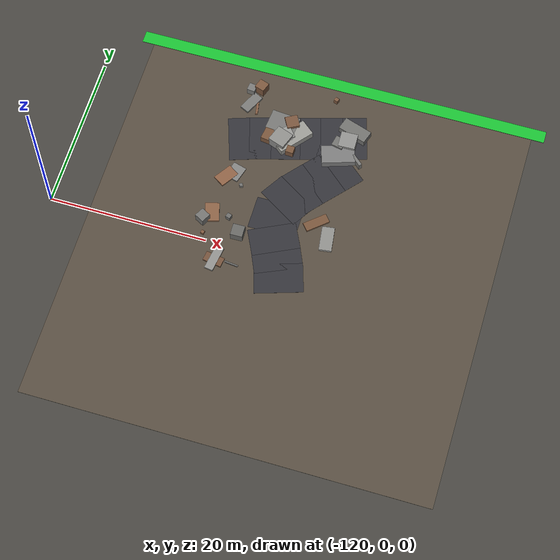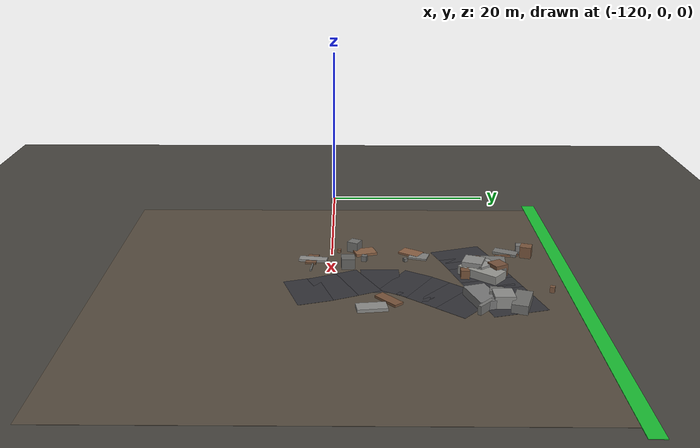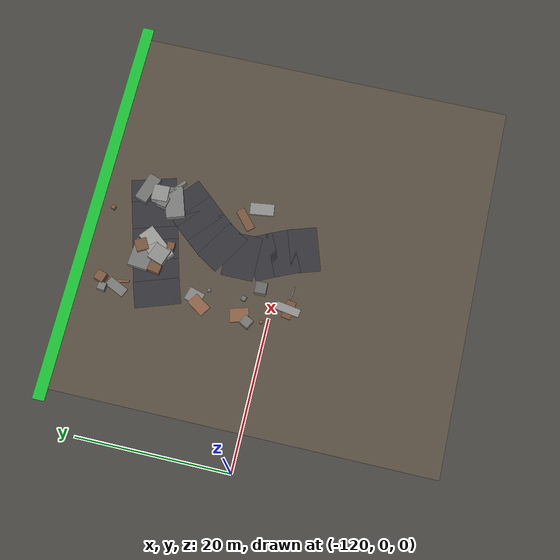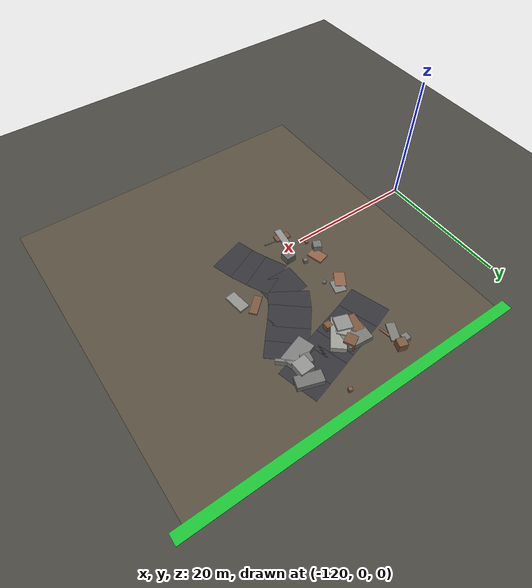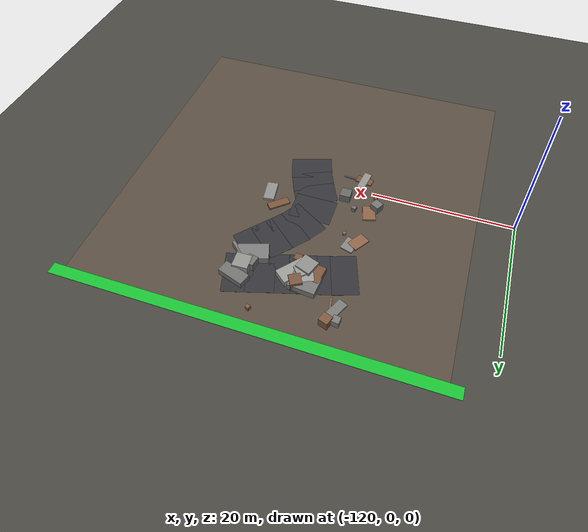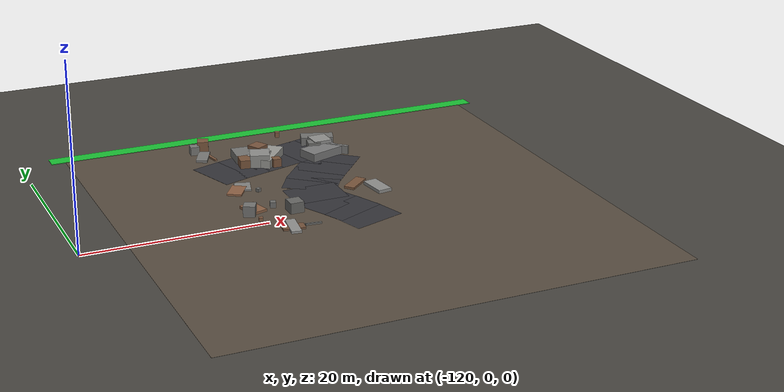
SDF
<sdf version="1.6">
 <world name="navitas_arena">
  <model name="ground_plane">
   <static>true</static>
   <link name="link">
    <collision name="collision">
     <geometry><plane><normal>0 0 1</normal><size>400 400</size></plane></geometry>
     <surface><friction><ode><mu>0.820</mu><mu2>0.820</mu2></ode></friction></surface>
    </collision>
    <visual name="visual">
     <cast_shadows>false</cast_shadows>
     <geometry><plane><normal>0 0 1</normal><size>400 400</size></plane></geometry>
     <material><ambient>0.280 0.270 0.250 1</ambient><diffuse>0.280 0.270 0.250 1</diffuse></material>
    </visual>
   </link>
  </model>
  <model name="gd_kolay">
   <static>true</static>
   <pose>-90.000 0.000 0.010 0 0 0.000</pose>
   <link name="link">
    <collision name="col"><geometry><box><size>50.000 50.000 0.020</size></box></geometry></collision>
    <visual name="vis">
     <geometry><box><size>50.000 50.000 0.020</size></box></geometry>
     <material><ambient>0.34 0.30 0.25 1</ambient><diffuse>0.34 0.30 0.25 1</diffuse></material>
    </visual>
   </link>
  </model>
  <model name="brd_kolay_N">
   <static>true</static>
   <pose>-90.000 25.800 0.040 0 0 0.000</pose>
   <link name="link">
    <collision name="col"><geometry><box><size>53.200 1.600 0.080</size></box></geometry></collision>
    <visual name="vis">
     <geometry><box><size>53.200 1.600 0.080</size></box></geometry>
     <material><ambient>0.10 0.75 0.20 1</ambient><diffuse>0.10 0.75 0.20 1</diffuse></material>
    </visual>
   </link>
  </model>
  <model name="road_kolay_1_17">
   <static>true</static>
   <pose>-99.868 14.853 0.040 0 0 0.329</pose>
   <link name="link">
    <collision name="col"><geometry><box><size>3.490 6.000 0.020</size></box></geometry></collision>
    <visual name="vis">
     <geometry><box><size>3.490 6.000 0.020</size></box></geometry>
     <material><ambient>0.20 0.20 0.22 1</ambient><diffuse>0.20 0.20 0.22 1</diffuse></material>
    </visual>
   </link>
  </model>
  <model name="road_kolay_1_18">
   <static>true</static>
   <pose>-97.321 15.657 0.040 0 0 0.284</pose>
   <link name="link">
    <collision name="col"><geometry><box><size>3.652 6.000 0.020</size></box></geometry></collision>
    <visual name="vis">
     <geometry><box><size>3.652 6.000 0.020</size></box></geometry>
     <material><ambient>0.20 0.20 0.22 1</ambient><diffuse>0.20 0.20 0.22 1</diffuse></material>
    </visual>
   </link>
  </model>
  <model name="road_kolay_1_19">
   <static>true</static>
   <pose>-94.676 16.409 0.040 0 0 0.270</pose>
   <link name="link">
    <collision name="col"><geometry><box><size>3.648 6.000 0.020</size></box></geometry></collision>
    <visual name="vis">
     <geometry><box><size>3.648 6.000 0.020</size></box></geometry>
     <material><ambient>0.20 0.20 0.22 1</ambient><diffuse>0.20 0.20 0.22 1</diffuse></material>
    </visual>
   </link>
  </model>
  <model name="road_kolay_1_20">
   <static>true</static>
   <pose>-92.118 17.138 0.040 0 0 0.285</pose>
   <link name="link">
    <collision name="col"><geometry><box><size>3.473 6.000 0.020</size></box></geometry></collision>
    <visual name="vis">
     <geometry><box><size>3.473 6.000 0.020</size></box></geometry>
     <material><ambient>0.20 0.20 0.22 1</ambient><diffuse>0.20 0.20 0.22 1</diffuse></material>
    </visual>
   </link>
  </model>
  <model name="road_kolay_1_21">
   <static>true</static>
   <pose>-89.523 17.910 0.040 0 0 0.293</pose>
   <link name="link">
    <collision name="col"><geometry><box><size>3.741 6.000 0.020</size></box></geometry></collision>
    <visual name="vis">
     <geometry><box><size>3.741 6.000 0.020</size></box></geometry>
     <material><ambient>0.20 0.20 0.22 1</ambient><diffuse>0.20 0.20 0.22 1</diffuse></material>
    </visual>
   </link>
  </model>
  <model name="road_kolay_1_22">
   <static>true</static>
   <pose>-86.726 18.730 0.040 0 0 0.278</pose>
   <link name="link">
    <collision name="col"><geometry><box><size>3.890 6.000 0.020</size></box></geometry></collision>
    <visual name="vis">
     <geometry><box><size>3.890 6.000 0.020</size></box></geometry>
     <material><ambient>0.20 0.20 0.22 1</ambient><diffuse>0.20 0.20 0.22 1</diffuse></material>
    </visual>
   </link>
  </model>
  <model name="road_kolay_2_7">
   <static>true</static>
   <pose>-89.991 -2.400 0.040 0 0 1.884</pose>
   <link name="link">
    <collision name="col"><geometry><box><size>3.843 6.000 0.020</size></box></geometry></collision>
    <visual name="vis">
     <geometry><box><size>3.843 6.000 0.020</size></box></geometry>
     <material><ambient>0.20 0.20 0.22 1</ambient><diffuse>0.20 0.20 0.22 1</diffuse></material>
    </visual>
   </link>
  </model>
  <model name="road_kolay_2_8">
   <static>true</static>
   <pose>-90.962 0.167 0.040 0 0 1.988</pose>
   <link name="link">
    <collision name="col"><geometry><box><size>3.452 6.000 0.020</size></box></geometry></collision>
    <visual name="vis">
     <geometry><box><size>3.452 6.000 0.020</size></box></geometry>
     <material><ambient>0.20 0.20 0.22 1</ambient><diffuse>0.20 0.20 0.22 1</diffuse></material>
    </visual>
   </link>
  </model>
  <model name="road_kolay_2_9">
   <static>true</static>
   <pose>-92.051 2.500 0.040 0 0 2.026</pose>
   <link name="link">
    <collision name="col"><geometry><box><size>3.498 6.000 0.020</size></box></geometry></collision>
    <visual name="vis">
     <geometry><box><size>3.498 6.000 0.020</size></box></geometry>
     <material><ambient>0.20 0.20 0.22 1</ambient><diffuse>0.20 0.20 0.22 1</diffuse></material>
    </visual>
   </link>
  </model>
  <model name="road_kolay_2_10">
   <static>true</static>
   <pose>-92.623 5.344 0.040 0 0 1.571</pose>
   <link name="link">
    <collision name="col"><geometry><box><size>4.255 6.000 0.020</size></box></geometry></collision>
    <visual name="vis">
     <geometry><box><size>4.255 6.000 0.020</size></box></geometry>
     <material><ambient>0.20 0.20 0.22 1</ambient><diffuse>0.20 0.20 0.22 1</diffuse></material>
    </visual>
   </link>
  </model>
  <model name="road_kolay_2_11">
   <static>true</static>
   <pose>-91.972 8.077 0.040 0 0 1.018</pose>
   <link name="link">
    <collision name="col"><geometry><box><size>3.379 6.000 0.020</size></box></geometry></collision>
    <visual name="vis">
     <geometry><box><size>3.379 6.000 0.020</size></box></geometry>
     <material><ambient>0.20 0.20 0.22 1</ambient><diffuse>0.20 0.20 0.22 1</diffuse></material>
    </visual>
   </link>
  </model>
  <model name="road_kolay_2_12">
   <static>true</static>
   <pose>-90.460 10.157 0.040 0 0 0.873</pose>
   <link name="link">
    <collision name="col"><geometry><box><size>3.577 6.000 0.020</size></box></geometry></collision>
    <visual name="vis">
     <geometry><box><size>3.577 6.000 0.020</size></box></geometry>
     <material><ambient>0.20 0.20 0.22 1</ambient><diffuse>0.20 0.20 0.22 1</diffuse></material>
    </visual>
   </link>
  </model>
  <model name="road_kolay_2_13">
   <static>true</static>
   <pose>-88.810 12.091 0.040 0 0 0.855</pose>
   <link name="link">
    <collision name="col"><geometry><box><size>3.308 6.000 0.020</size></box></geometry></collision>
    <visual name="vis">
     <geometry><box><size>3.308 6.000 0.020</size></box></geometry>
     <material><ambient>0.20 0.20 0.22 1</ambient><diffuse>0.20 0.20 0.22 1</diffuse></material>
    </visual>
   </link>
  </model>
  <model name="road_kolay_2_14">
   <static>true</static>
   <pose>-87.152 14.014 0.040 0 0 0.863</pose>
   <link name="link">
    <collision name="col"><geometry><box><size>3.570 6.000 0.020</size></box></geometry></collision>
    <visual name="vis">
     <geometry><box><size>3.570 6.000 0.020</size></box></geometry>
     <material><ambient>0.20 0.20 0.22 1</ambient><diffuse>0.20 0.20 0.22 1</diffuse></material>
    </visual>
   </link>
  </model>
  <model name="blk_kolay_1_1_0">
   <static>true</static>
   <pose>-94.679 16.506 0.615 0 0 2.246</pose>
   <link name="link">
    <collision name="col"><geometry><box><size>1.745 1.745 1.229</size></box></geometry></collision>
    <visual name="vis">
     <geometry><box><size>1.745 1.745 1.229</size></box></geometry>
     <material><ambient>0.59 0.59 0.58 1</ambient><diffuse>0.59 0.59 0.58 1</diffuse></material>
    </visual>
   </link>
  </model>
  <model name="blk_kolay_1_1_1">
   <static>true</static>
   <pose>-95.653 15.428 0.500 0 0 0.608</pose>
   <link name="link">
    <collision name="col"><geometry><box><size>0.809 0.809 1.000</size></box></geometry></collision>
    <visual name="vis">
     <geometry><box><size>0.809 0.809 1.000</size></box></geometry>
     <material><ambient>0.52 0.52 0.51 1</ambient><diffuse>0.52 0.52 0.51 1</diffuse></material>
    </visual>
   </link>
  </model>
  <model name="blk_kolay_1_1_2">
   <static>true</static>
   <pose>-95.092 15.694 0.757 0 0 1.229</pose>
   <link name="link">
    <collision name="col"><geometry><box><size>2.191 2.191 1.515</size></box></geometry></collision>
    <visual name="vis">
     <geometry><box><size>2.191 2.191 1.515</size></box></geometry>
     <material><ambient>0.55 0.55 0.54 1</ambient><diffuse>0.55 0.55 0.54 1</diffuse></material>
    </visual>
   </link>
  </model>
  <model name="blk_kolay_1_1_3">
   <static>true</static>
   <pose>-94.352 18.257 0.710 0 0 0.504</pose>
   <link name="link">
    <collision name="col"><geometry><box><size>1.588 1.588 1.420</size></box></geometry></collision>
    <visual name="vis">
     <geometry><box><size>1.588 1.588 1.420</size></box></geometry>
     <material><ambient>0.47 0.33 0.24 1</ambient><diffuse>0.47 0.33 0.24 1</diffuse></material>
    </visual>
   </link>
  </model>
  <model name="blk_kolay_1_1_4">
   <static>true</static>
   <pose>-93.833 16.455 0.500 0 0 0.879</pose>
   <link name="link">
    <collision name="col"><geometry><box><size>4.776 2.167 1.000</size></box></geometry></collision>
    <visual name="vis">
     <geometry><box><size>4.776 2.167 1.000</size></box></geometry>
     <material><ambient>0.60 0.60 0.58 1</ambient><diffuse>0.60 0.60 0.58 1</diffuse></material>
    </visual>
   </link>
  </model>
  <model name="blk_kolay_1_1_5">
   <static>true</static>
   <pose>-93.541 14.595 0.500 0 0 1.538</pose>
   <link name="link">
    <collision name="col"><geometry><box><size>0.969 0.969 1.000</size></box></geometry></collision>
    <visual name="vis">
     <geometry><box><size>0.969 0.969 1.000</size></box></geometry>
     <material><ambient>0.47 0.33 0.23 1</ambient><diffuse>0.47 0.33 0.23 1</diffuse></material>
    </visual>
   </link>
  </model>
  <model name="blk_kolay_1_1_6">
   <static>true</static>
   <pose>-95.481 17.961 0.500 0 0 3.052</pose>
   <link name="link">
    <collision name="col"><geometry><box><size>3.701 2.669 1.000</size></box></geometry></collision>
    <visual name="vis">
     <geometry><box><size>3.701 2.669 1.000</size></box></geometry>
     <material><ambient>0.46 0.46 0.45 1</ambient><diffuse>0.46 0.46 0.45 1</diffuse></material>
    </visual>
   </link>
  </model>
  <model name="blk_kolay_1_1_7">
   <static>true</static>
   <pose>-95.131 16.755 0.500 0 0 1.947</pose>
   <link name="link">
    <collision name="col"><geometry><box><size>2.573 2.242 1.000</size></box></geometry></collision>
    <visual name="vis">
     <geometry><box><size>2.573 2.242 1.000</size></box></geometry>
     <material><ambient>0.60 0.60 0.59 1</ambient><diffuse>0.60 0.60 0.59 1</diffuse></material>
    </visual>
   </link>
  </model>
  <model name="blk_kolay_1_1_8">
   <static>true</static>
   <pose>-96.204 16.308 0.500 0 0 1.418</pose>
   <link name="link">
    <collision name="col"><geometry><box><size>2.642 2.360 1.000</size></box></geometry></collision>
    <visual name="vis">
     <geometry><box><size>2.642 2.360 1.000</size></box></geometry>
     <material><ambient>0.47 0.33 0.23 1</ambient><diffuse>0.47 0.33 0.23 1</diffuse></material>
    </visual>
   </link>
  </model>
  <model name="blk_kolay_2_1_1">
   <static>true</static>
   <pose>-86.926 17.687 0.676 0 0 1.601</pose>
   <link name="link">
    <collision name="col"><geometry><box><size>2.127 2.127 1.352</size></box></geometry></collision>
    <visual name="vis">
     <geometry><box><size>2.127 2.127 1.352</size></box></geometry>
     <material><ambient>0.56 0.56 0.55 1</ambient><diffuse>0.56 0.56 0.55 1</diffuse></material>
    </visual>
   </link>
  </model>
  <model name="blk_kolay_2_1_3">
   <static>true</static>
   <pose>-86.510 19.530 0.500 0 0 2.823</pose>
   <link name="link">
    <collision name="col"><geometry><box><size>3.739 1.695 1.000</size></box></geometry></collision>
    <visual name="vis">
     <geometry><box><size>3.739 1.695 1.000</size></box></geometry>
     <material><ambient>0.44 0.44 0.43 1</ambient><diffuse>0.44 0.44 0.43 1</diffuse></material>
    </visual>
   </link>
  </model>
  <model name="blk_kolay_2_1_4">
   <static>true</static>
   <pose>-87.639 15.641 0.500 0 0 0.318</pose>
   <link name="link">
    <collision name="col"><geometry><box><size>4.168 2.451 1.000</size></box></geometry></collision>
    <visual name="vis">
     <geometry><box><size>4.168 2.451 1.000</size></box></geometry>
     <material><ambient>0.48 0.48 0.48 1</ambient><diffuse>0.48 0.48 0.48 1</diffuse></material>
    </visual>
   </link>
  </model>
  <model name="blk_kolay_2_1_5">
   <static>true</static>
   <pose>-86.099 16.277 0.500 0 0 2.417</pose>
   <link name="link">
    <collision name="col"><geometry><box><size>4.138 0.405 1.000</size></box></geometry></collision>
    <visual name="vis">
     <geometry><box><size>4.138 0.405 1.000</size></box></geometry>
     <material><ambient>0.47 0.47 0.46 1</ambient><diffuse>0.47 0.47 0.46 1</diffuse></material>
    </visual>
   </link>
  </model>
  <model name="blk_kolay_2_1_7">
   <static>true</static>
   <pose>-87.917 17.124 0.638 0 0 2.934</pose>
   <link name="link">
    <collision name="col"><geometry><box><size>1.423 1.423 1.276</size></box></geometry></collision>
    <visual name="vis">
     <geometry><box><size>1.423 1.423 1.276</size></box></geometry>
     <material><ambient>0.44 0.44 0.43 1</ambient><diffuse>0.44 0.44 0.43 1</diffuse></material>
    </visual>
   </link>
  </model>
  <model name="deb_kolay_0">
   <static>true</static>
   <pose>-96.002 -2.222 0.111 0 0 3.036</pose>
   <link name="link">
    <collision name="col"><geometry><box><size>1.737 0.191 0.221</size></box></geometry></collision>
    <visual name="vis">
     <geometry><box><size>1.737 0.191 0.221</size></box></geometry>
     <material><ambient>0.41 0.41 0.40 1</ambient><diffuse>0.41 0.41 0.40 1</diffuse></material>
    </visual>
   </link>
  </model>
  <model name="deb_kolay_11">
   <static>true</static>
   <pose>-89.987 23.363 0.330 0 0 2.803</pose>
   <link name="link">
    <collision name="col"><geometry><box><size>0.515 0.515 0.661</size></box></geometry></collision>
    <visual name="vis">
     <geometry><box><size>0.515 0.515 0.661</size></box></geometry>
     <material><ambient>0.49 0.35 0.25 1</ambient><diffuse>0.49 0.35 0.25 1</diffuse></material>
    </visual>
   </link>
  </model>
  <model name="deb_kolay_15">
   <static>true</static>
   <pose>-100.354 3.798 0.153 0 0 1.852</pose>
   <link name="link">
    <collision name="col"><geometry><box><size>2.459 1.764 0.306</size></box></geometry></collision>
    <visual name="vis">
     <geometry><box><size>2.459 1.764 0.306</size></box></geometry>
     <material><ambient>0.54 0.38 0.27 1</ambient><diffuse>0.54 0.38 0.27 1</diffuse></material>
    </visual>
   </link>
  </model>
  <model name="deb_kolay_19">
   <static>true</static>
   <pose>-99.482 20.101 0.116 0 0 1.750</pose>
   <link name="link">
    <collision name="col"><geometry><box><size>2.808 0.290 0.233</size></box></geometry></collision>
    <visual name="vis">
     <geometry><box><size>2.808 0.290 0.233</size></box></geometry>
     <material><ambient>0.51 0.36 0.26 1</ambient><diffuse>0.51 0.36 0.26 1</diffuse></material>
    </visual>
   </link>
  </model>
  <model name="deb_kolay_23">
   <static>true</static>
   <pose>-101.167 2.630 0.612 0 0 1.078</pose>
   <link name="link">
    <collision name="col"><geometry><box><size>1.273 1.273 1.224</size></box></geometry></collision>
    <visual name="vis">
     <geometry><box><size>1.273 1.273 1.224</size></box></geometry>
     <material><ambient>0.45 0.45 0.44 1</ambient><diffuse>0.45 0.45 0.44 1</diffuse></material>
    </visual>
   </link>
  </model>
  <model name="deb_kolay_42">
   <static>true</static>
   <pose>-100.749 21.871 0.497 0 0 1.460</pose>
   <link name="link">
    <collision name="col"><geometry><box><size>1.015 1.015 0.994</size></box></geometry></collision>
    <visual name="vis">
     <geometry><box><size>1.015 1.015 0.994</size></box></geometry>
     <material><ambient>0.47 0.47 0.46 1</ambient><diffuse>0.47 0.47 0.46 1</diffuse></material>
    </visual>
   </link>
  </model>
  <model name="deb_kolay_47">
   <static>true</static>
   <pose>-98.172 3.718 0.325 0 0 2.843</pose>
   <link name="link">
    <collision name="col"><geometry><box><size>0.608 0.608 0.650</size></box></geometry></collision>
    <visual name="vis">
     <geometry><box><size>0.608 0.608 0.650</size></box></geometry>
     <material><ambient>0.42 0.42 0.41 1</ambient><diffuse>0.42 0.42 0.41 1</diffuse></material>
    </visual>
   </link>
  </model>
  <model name="deb_kolay_63">
   <static>true</static>
   <pose>-100.232 9.161 0.117 0 0 0.987</pose>
   <link name="link">
    <collision name="col"><geometry><box><size>2.514 1.614 0.234</size></box></geometry></collision>
    <visual name="vis">
     <geometry><box><size>2.514 1.614 0.234</size></box></geometry>
     <material><ambient>0.55 0.38 0.27 1</ambient><diffuse>0.55 0.38 0.27 1</diffuse></material>
    </visual>
   </link>
  </model>
  <model name="deb_kolay_64">
   <static>true</static>
   <pose>-96.437 1.851 0.605 0 0 0.019</pose>
   <link name="link">
    <collision name="col"><geometry><box><size>1.519 1.519 1.211</size></box></geometry></collision>
    <visual name="vis">
     <geometry><box><size>1.519 1.519 1.211</size></box></geometry>
     <material><ambient>0.40 0.40 0.39 1</ambient><diffuse>0.40 0.40 0.39 1</diffuse></material>
    </visual>
   </link>
  </model>
  <model name="deb_kolay_81">
   <static>true</static>
   <pose>-99.574 22.329 0.671 0 0 1.248</pose>
   <link name="link">
    <collision name="col"><geometry><box><size>1.282 1.282 1.343</size></box></geometry></collision>
    <visual name="vis">
     <geometry><box><size>1.282 1.282 1.343</size></box></geometry>
     <material><ambient>0.48 0.34 0.24 1</ambient><diffuse>0.48 0.34 0.24 1</diffuse></material>
    </visual>
   </link>
  </model>
  <model name="deb_kolay_85">
   <static>true</static>
   <pose>-98.240 -2.234 0.116 0 0 2.997</pose>
   <link name="link">
    <collision name="col"><geometry><box><size>2.389 1.220 0.231</size></box></geometry></collision>
    <visual name="vis">
     <geometry><box><size>2.389 1.220 0.231</size></box></geometry>
     <material><ambient>0.45 0.32 0.23 1</ambient><diffuse>0.45 0.32 0.23 1</diffuse></material>
    </visual>
   </link>
  </model>
  <model name="deb_kolay_93">
   <static>true</static>
   <pose>-85.816 4.214 0.192 0 0 1.705</pose>
   <link name="link">
    <collision name="col"><geometry><box><size>3.171 1.578 0.384</size></box></geometry></collision>
    <visual name="vis">
     <geometry><box><size>3.171 1.578 0.384</size></box></geometry>
     <material><ambient>0.55 0.55 0.54 1</ambient><diffuse>0.55 0.55 0.54 1</diffuse></material>
    </visual>
   </link>
  </model>
  <model name="deb_kolay_114">
   <static>true</static>
   <pose>-100.480 2.970 0.144 0 0 3.129</pose>
   <link name="link">
    <collision name="col"><geometry><box><size>2.110 0.163 0.289</size></box></geometry></collision>
    <visual name="vis">
     <geometry><box><size>2.110 0.163 0.289</size></box></geometry>
     <material><ambient>0.42 0.42 0.42 1</ambient><diffuse>0.42 0.42 0.42 1</diffuse></material>
    </visual>
   </link>
  </model>
  <model name="deb_kolay_115">
   <static>true</static>
   <pose>-87.666 6.030 0.141 0 0 0.714</pose>
   <link name="link">
    <collision name="col"><geometry><box><size>3.089 1.174 0.281</size></box></geometry></collision>
    <visual name="vis">
     <geometry><box><size>3.089 1.174 0.281</size></box></geometry>
     <material><ambient>0.47 0.33 0.23 1</ambient><diffuse>0.47 0.33 0.23 1</diffuse></material>
    </visual>
   </link>
  </model>
  <model name="deb_kolay_116">
   <static>true</static>
   <pose>-100.627 0.830 0.198 0 0 2.982</pose>
   <link name="link">
    <collision name="col"><geometry><box><size>0.415 0.415 0.395</size></box></geometry></collision>
    <visual name="vis">
     <geometry><box><size>0.415 0.415 0.395</size></box></geometry>
     <material><ambient>0.50 0.35 0.25 1</ambient><diffuse>0.50 0.35 0.25 1</diffuse></material>
    </visual>
   </link>
  </model>
  <model name="deb_kolay_123">
   <static>true</static>
   <pose>-99.258 9.998 0.106 0 0 1.288</pose>
   <link name="link">
    <collision name="col"><geometry><box><size>2.107 1.762 0.212</size></box></geometry></collision>
    <visual name="vis">
     <geometry><box><size>2.107 1.762 0.212</size></box></geometry>
     <material><ambient>0.51 0.51 0.50 1</ambient><diffuse>0.51 0.51 0.50 1</diffuse></material>
    </visual>
   </link>
  </model>
  <model name="deb_kolay_124">
   <static>true</static>
   <pose>-98.049 8.363 0.195 0 0 0.450</pose>
   <link name="link">
    <collision name="col"><geometry><box><size>0.435 0.435 0.390</size></box></geometry></collision>
    <visual name="vis">
     <geometry><box><size>0.435 0.435 0.390</size></box></geometry>
     <material><ambient>0.43 0.43 0.42 1</ambient><diffuse>0.43 0.43 0.42 1</diffuse></material>
    </visual>
   </link>
  </model>
  <model name="deb_kolay_127">
   <static>true</static>
   <pose>-100.308 20.118 0.154 0 0 1.126</pose>
   <link name="link">
    <collision name="col"><geometry><box><size>2.766 1.277 0.308</size></box></geometry></collision>
    <visual name="vis">
     <geometry><box><size>2.766 1.277 0.308</size></box></geometry>
     <material><ambient>0.47 0.47 0.46 1</ambient><diffuse>0.47 0.47 0.46 1</diffuse></material>
    </visual>
   </link>
  </model>
  <model name="deb_kolay_128">
   <static>true</static>
   <pose>-98.215 -2.113 0.137 0 0 1.422</pose>
   <link name="link">
    <collision name="col"><geometry><box><size>3.192 1.086 0.275</size></box></geometry></collision>
    <visual name="vis">
     <geometry><box><size>3.192 1.086 0.275</size></box></geometry>
     <material><ambient>0.56 0.56 0.55 1</ambient><diffuse>0.56 0.56 0.55 1</diffuse></material>
    </visual>
   </link>
  </model>
 </world>
</sdf>
